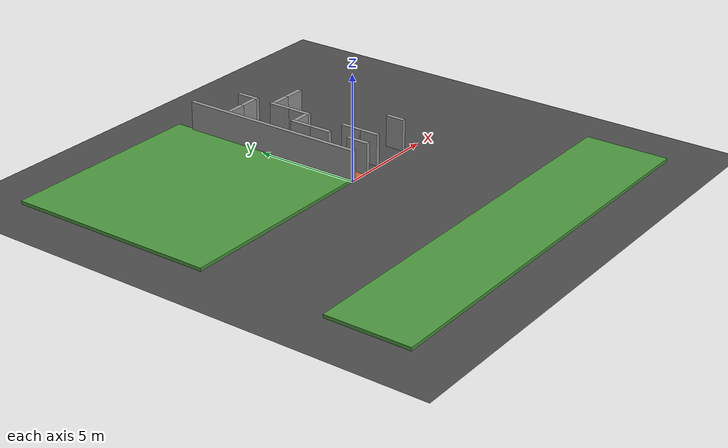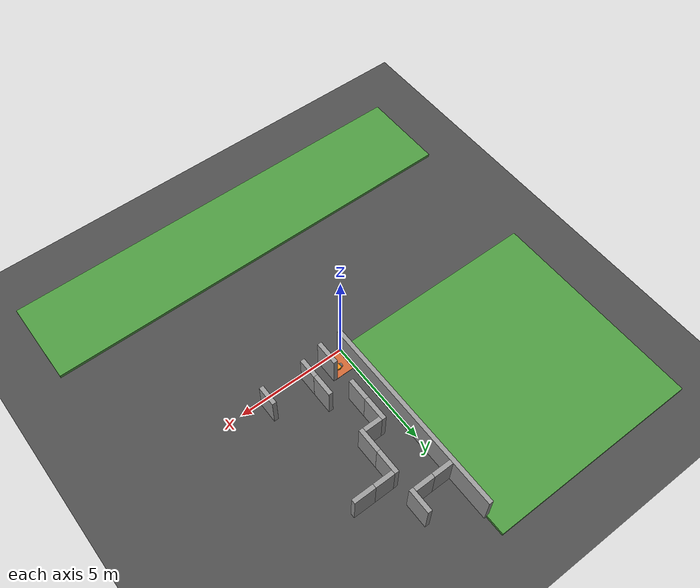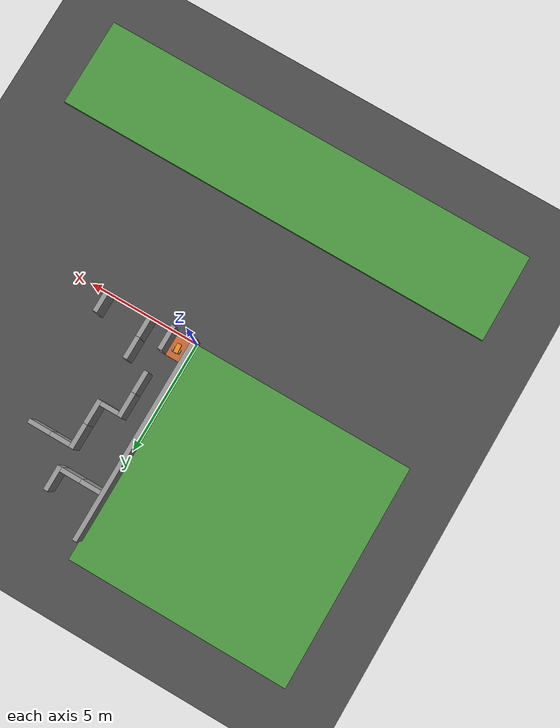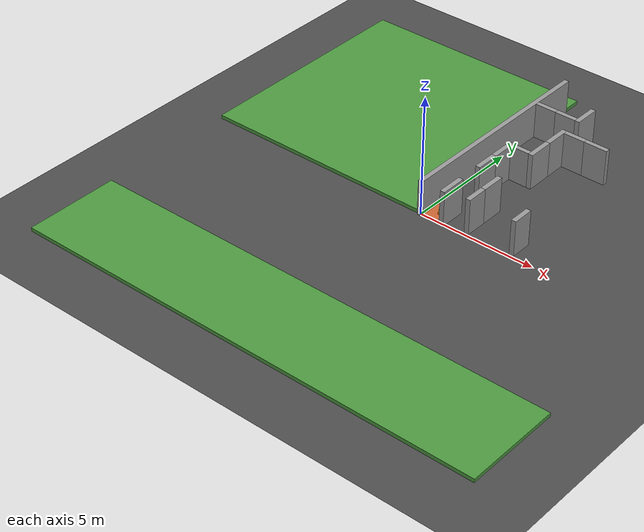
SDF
<sdf version="1.6">
 <world name="default">
  <model name="ground_plane">
   <static>1</static>
   <link name="link">
    <collision name="collision">
     <geometry><plane><normal>0 0 1</normal><size>20 20</size></plane></geometry>
     <surface><friction><ode><mu>100</mu><mu2>50</mu2></ode></friction></surface>
    </collision>
    <visual name="visual">
     <cast_shadows>0</cast_shadows>
     <geometry><plane><normal>0 0 1</normal><size>20 20</size></plane></geometry>
     <material>
      <script>
       <uri>model://asphalt_plane/materials/scripts</uri>
       <uri>model://asphalt_plane/materials/textures</uri>
       <name>vrc/asphalt</name>
      </script>
     </material>
    </visual>
   </link>
  </model>
  <model name="grey_1wall">
   <static>1</static>
   <link name="link">
    <pose>0 0 0.75 0 -0 0</pose>
    <inertial>
     <mass>5</mass>
     <inertia><ixx>1</ixx><ixy>0</ixy><ixz>0</ixz><iyy>1</iyy><iyz>0</iyz><izz>1</izz></inertia>
    </inertial>
    <visual name="ModelPreview_1::link::visual_1">
     <cast_shadows>0</cast_shadows>
     <geometry><box><size>0.9 0.2 1.5</size></box></geometry>
     <material>
      <script>
       <uri>model://grey_wall/materials/scripts</uri>
       <uri>model://grey_wall/materials/textures</uri>
       <name>vrc/grey_wall</name>
      </script>
      <ambient>1 1 1 1</ambient>
      <diffuse>1 1 1 1</diffuse>
      <specular>0 0 0 1</specular>
      <emissive>0 0 0 1</emissive>
      <shader type="vertex"><normal_map>__default__</normal_map></shader>
     </material>
    </visual>
    <collision name="collision">
     <geometry><box><size>0.9 0.2 1.5</size></box></geometry>
     <surface>
      <friction>
       <ode><mu>1</mu><mu2>1</mu2><fdir1>0 0 0</fdir1><slip1>0</slip1><slip2>0</slip2></ode>
       <torsional>
        <coefficient>1</coefficient>
        <patch_radius>0</patch_radius>
        <surface_radius>0</surface_radius>
        <use_patch_radius>1</use_patch_radius>
        <ode><slip>0</slip></ode>
       </torsional>
      </friction>
      <bounce><restitution_coefficient>0</restitution_coefficient><threshold>1e+06</threshold></bounce>
      <contact>
       <collide_without_contact>0</collide_without_contact>
       <collide_without_contact_bitmask>1</collide_without_contact_bitmask>
       <collide_bitmask>1</collide_bitmask>
       <ode>
        <soft_cfm>0</soft_cfm>
        <soft_erp>0.2</soft_erp>
        <kp>1e+13</kp>
        <kd>1</kd>
        <max_vel>0.01</max_vel>
        <min_depth>0</min_depth>
       </ode>
       <bullet>
        <split_impulse>1</split_impulse>
        <split_impulse_penetration_threshold>-0.01</split_impulse_penetration_threshold>
        <soft_cfm>0</soft_cfm>
        <soft_erp>0.2</soft_erp>
        <kp>1e+13</kp>
        <kd>1</kd>
       </bullet>
      </contact>
     </surface>
    </collision>
   </link>
   <static>1</static>
   <pose>2.55 6 0 0 -0 0</pose>
  </model>
  <model name="grey_1wall_0">
   <static>1</static>
   <link name="link">
    <pose>0 0 0.75 0 -0 0</pose>
    <inertial>
     <mass>5</mass>
     <inertia><ixx>1</ixx><ixy>0</ixy><ixz>0</ixz><iyy>1</iyy><iyz>0</iyz><izz>1</izz></inertia>
    </inertial>
    <visual name="ModelPreview_1::link::visual_1">
     <cast_shadows>0</cast_shadows>
     <geometry><box><size>1 0.2 1.5</size></box></geometry>
     <material>
      <script>
       <uri>model://grey_wall/materials/scripts</uri>
       <uri>model://grey_wall/materials/textures</uri>
       <name>vrc/grey_wall</name>
      </script>
      <ambient>1 1 1 1</ambient>
      <diffuse>1 1 1 1</diffuse>
      <specular>0 0 0 1</specular>
      <emissive>0 0 0 1</emissive>
      <shader type="vertex"><normal_map>__default__</normal_map></shader>
     </material>
    </visual>
    <collision name="collision">
     <geometry><box><size>1 0.2 1.5</size></box></geometry>
     <surface>
      <friction>
       <ode><mu>1</mu><mu2>1</mu2><fdir1>0 0 0</fdir1><slip1>0</slip1><slip2>0</slip2></ode>
       <torsional>
        <coefficient>1</coefficient>
        <patch_radius>0</patch_radius>
        <surface_radius>0</surface_radius>
        <use_patch_radius>1</use_patch_radius>
        <ode><slip>0</slip></ode>
       </torsional>
      </friction>
      <bounce><restitution_coefficient>0</restitution_coefficient><threshold>1e+06</threshold></bounce>
      <contact>
       <collide_without_contact>0</collide_without_contact>
       <collide_without_contact_bitmask>1</collide_without_contact_bitmask>
       <collide_bitmask>1</collide_bitmask>
       <ode>
        <soft_cfm>0</soft_cfm>
        <soft_erp>0.2</soft_erp>
        <kp>1e+13</kp>
        <kd>1</kd>
        <max_vel>0.01</max_vel>
        <min_depth>0</min_depth>
       </ode>
       <bullet>
        <split_impulse>1</split_impulse>
        <split_impulse_penetration_threshold>-0.01</split_impulse_penetration_threshold>
        <soft_cfm>0</soft_cfm>
        <soft_erp>0.2</soft_erp>
        <kp>1e+13</kp>
        <kd>1</kd>
       </bullet>
      </contact>
     </surface>
    </collision>
   </link>
   <static>1</static>
   <pose>3.5 6 0 0 -0 0</pose>
  </model>
  <model name="grey_9wall_1">
   <static>1</static>
   <link name="link">
    <pose>0 0 0.75 0 -0 1.57</pose>
    <inertial>
     <mass>20</mass>
     <inertia><ixx>1</ixx><ixy>0</ixy><ixz>0</ixz><iyy>1</iyy><iyz>0</iyz><izz>1</izz></inertia>
    </inertial>
    <visual name="ModelPreview_1::link::visual_1">
     <cast_shadows>0</cast_shadows>
     <geometry><box><size>9.2 0.2 1.5</size></box></geometry>
     <material>
      <script>
       <uri>model://grey_wall/materials/scripts</uri>
       <uri>model://grey_wall/materials/textures</uri>
       <name>vrc/grey_wall</name>
      </script>
      <ambient>1 1 1 1</ambient>
      <diffuse>1 1 1 1</diffuse>
      <specular>0 0 0 1</specular>
      <emissive>0 0 0 1</emissive>
      <shader type="vertex"><normal_map>__default__</normal_map></shader>
     </material>
    </visual>
    <collision name="collision">
     <geometry><box><size>9.2 0.2 1.5</size></box></geometry>
     <surface>
      <friction>
       <ode><mu>1</mu><mu2>1</mu2><fdir1>0 0 0</fdir1><slip1>0</slip1><slip2>0</slip2></ode>
       <torsional>
        <coefficient>1</coefficient>
        <patch_radius>0</patch_radius>
        <surface_radius>0</surface_radius>
        <use_patch_radius>1</use_patch_radius>
        <ode><slip>0</slip></ode>
       </torsional>
      </friction>
      <bounce><restitution_coefficient>0</restitution_coefficient><threshold>1e+06</threshold></bounce>
      <contact>
       <collide_without_contact>0</collide_without_contact>
       <collide_without_contact_bitmask>1</collide_without_contact_bitmask>
       <collide_bitmask>1</collide_bitmask>
       <ode>
        <soft_cfm>0</soft_cfm>
        <soft_erp>0.2</soft_erp>
        <kp>1e+13</kp>
        <kd>1</kd>
        <max_vel>0.01</max_vel>
        <min_depth>0</min_depth>
       </ode>
       <bullet>
        <split_impulse>1</split_impulse>
        <split_impulse_penetration_threshold>-0.01</split_impulse_penetration_threshold>
        <soft_cfm>0</soft_cfm>
        <soft_erp>0.2</soft_erp>
        <kp>1e+13</kp>
        <kd>1</kd>
       </bullet>
      </contact>
     </surface>
    </collision>
   </link>
   <static>1</static>
   <pose>0 4.5 0 0 -0 0</pose>
  </model>
  <model name="box_init">
   <static>1</static>
   <link name="link">
    <inertial>
     <mass>1</mass>
     <inertia>
      <ixx>0.166667</ixx>
      <ixy>0</ixy>
      <ixz>0</ixz>
      <iyy>0.166667</iyy>
      <iyz>0</iyz>
      <izz>0.166667</izz>
     </inertia>
    </inertial>
    <visual name="visual">
     <geometry><box><size>1 1 0.1</size></box></geometry>
     <material>
      <script><name>Gazebo/Grey</name><uri>file://media/materials/scripts/gazebo.material</uri></script>
      <ambient>1 0.5 0.2 1</ambient>
      <diffuse>0.8 0.4 0.2 1</diffuse>
      <specular>0.05 0.02 0.01 1</specular>
      <emissive>0 0 0 1</emissive>
      <shader type="vertex"><normal_map>__default__</normal_map></shader>
     </material>
    </visual>
    <collision name="collision">
     <geometry><box><size>1 1 0.1</size></box></geometry>
     <surface>
      <friction>
       <ode><mu>1</mu><mu2>1</mu2><fdir1>0 0 0</fdir1><slip1>0</slip1><slip2>0</slip2></ode>
       <torsional>
        <coefficient>1</coefficient>
        <patch_radius>0</patch_radius>
        <surface_radius>0</surface_radius>
        <use_patch_radius>1</use_patch_radius>
        <ode><slip>0</slip></ode>
       </torsional>
      </friction>
      <bounce><restitution_coefficient>0</restitution_coefficient><threshold>1e+06</threshold></bounce>
      <contact>
       <collide_without_contact>0</collide_without_contact>
       <collide_without_contact_bitmask>1</collide_without_contact_bitmask>
       <collide_bitmask>1</collide_bitmask>
       <ode>
        <soft_cfm>0</soft_cfm>
        <soft_erp>0.2</soft_erp>
        <kp>1e+13</kp>
        <kd>1</kd>
        <max_vel>0.01</max_vel>
        <min_depth>0</min_depth>
       </ode>
       <bullet>
        <split_impulse>1</split_impulse>
        <split_impulse_penetration_threshold>-0.01</split_impulse_penetration_threshold>
        <soft_cfm>0</soft_cfm>
        <soft_erp>0.2</soft_erp>
        <kp>1e+13</kp>
        <kd>1</kd>
       </bullet>
      </contact>
     </surface>
    </collision>
   </link>
   <static>0</static>
   <allow_auto_disable>0</allow_auto_disable>
   <pose>0.5 0.5 -0.049 0 -0 0</pose>
  </model>
  <model name="unit_box_platform">
   <static>1</static>
   <link name="link">
    <pose>9.4118 -2.75754 0 0 -0 0</pose>
    <inertial>
     <mass>10</mass>
     <inertia>
      <ixx>0.166667</ixx>
      <ixy>0</ixy>
      <ixz>0</ixz>
      <iyy>0.166667</iyy>
      <iyz>0</iyz>
      <izz>0.166667</izz>
     </inertia>
    </inertial>
    <visual name="visual">
     <cast_shadows>0</cast_shadows>
     <geometry><box><size>20 4 0.25</size></box></geometry>
     <material>
      <script><name>Gazebo/Grass</name><uri>file://media/materials/textures/gazebo.material</uri></script>
      <ambient>0.3 0.3 0.3 1</ambient>
      <diffuse>0.7 0.7 0.7 1</diffuse>
      <specular>0.01 0.01 0.01 1</specular>
      <emissive>0 0 0 1</emissive>
      <shader type="vertex"><normal_map>__default__</normal_map></shader>
     </material>
     <cast_shadows>0</cast_shadows>
    </visual>
    <collision name="collision">
     <geometry><box><size>20 4 0.25</size></box></geometry>
     <surface>
      <friction>
       <ode><mu>1</mu><mu2>1</mu2><fdir1>0 0 0</fdir1><slip1>0</slip1><slip2>0</slip2></ode>
       <torsional>
        <coefficient>1</coefficient>
        <patch_radius>0</patch_radius>
        <surface_radius>0</surface_radius>
        <use_patch_radius>1</use_patch_radius>
        <ode><slip>0</slip></ode>
       </torsional>
      </friction>
      <bounce><restitution_coefficient>0</restitution_coefficient><threshold>1e+06</threshold></bounce>
      <contact>
       <collide_without_contact>0</collide_without_contact>
       <collide_without_contact_bitmask>1</collide_without_contact_bitmask>
       <collide_bitmask>1</collide_bitmask>
       <ode>
        <soft_cfm>0</soft_cfm>
        <soft_erp>0.2</soft_erp>
        <kp>1e+13</kp>
        <kd>1</kd>
        <max_vel>0.01</max_vel>
        <min_depth>0</min_depth>
       </ode>
       <bullet>
        <split_impulse>1</split_impulse>
        <split_impulse_penetration_threshold>-0.01</split_impulse_penetration_threshold>
        <soft_cfm>0</soft_cfm>
        <soft_erp>0.2</soft_erp>
        <kp>1e+13</kp>
        <kd>1</kd>
       </bullet>
      </contact>
     </surface>
    </collision>
   </link>
   <static>0</static>
   <pose>-9.4118 -5.24246 0.001 0 -0 0</pose>
  </model>
  <model name="unit_box_lawn">
   <static>1</static>
   <link name="link">
    <pose>14.3617 -5.74416 0 0 -0 0</pose>
    <inertial>
     <mass>10</mass>
     <inertia>
      <ixx>0.166667</ixx>
      <ixy>0</ixy>
      <ixz>0</ixz>
      <iyy>0.166667</iyy>
      <iyz>0</iyz>
      <izz>0.166667</izz>
     </inertia>
    </inertial>
    <visual name="visual">
     <geometry><box><size>10 10 0.25</size></box></geometry>
     <material>
      <script><name>Gazebo/Grass</name><uri>file://media/materials/textures/gazebo.material</uri></script>
      <ambient>0.3 0.3 0.3 1</ambient>
      <diffuse>0.7 0.7 0.7 1</diffuse>
      <specular>0.01 0.01 0.01 1</specular>
      <emissive>0 0 0 1</emissive>
      <shader type="vertex"><normal_map>__default__</normal_map></shader>
     </material>
    </visual>
    <collision name="collision">
     <geometry><box><size>10 10 0.25</size></box></geometry>
     <surface>
      <friction>
       <ode><mu>1</mu><mu2>1</mu2><fdir1>0 0 0</fdir1><slip1>0</slip1><slip2>0</slip2></ode>
       <torsional>
        <coefficient>1</coefficient>
        <patch_radius>0</patch_radius>
        <surface_radius>0</surface_radius>
        <use_patch_radius>1</use_patch_radius>
        <ode><slip>0</slip></ode>
       </torsional>
      </friction>
      <bounce><restitution_coefficient>0</restitution_coefficient><threshold>1e+06</threshold></bounce>
      <contact>
       <collide_without_contact>0</collide_without_contact>
       <collide_without_contact_bitmask>1</collide_without_contact_bitmask>
       <collide_bitmask>1</collide_bitmask>
       <ode>
        <soft_cfm>0</soft_cfm>
        <soft_erp>0.2</soft_erp>
        <kp>1e+13</kp>
        <kd>1</kd>
        <max_vel>0.01</max_vel>
        <min_depth>0</min_depth>
       </ode>
       <bullet>
        <split_impulse>1</split_impulse>
        <split_impulse_penetration_threshold>-0.01</split_impulse_penetration_threshold>
        <soft_cfm>0</soft_cfm>
        <soft_erp>0.2</soft_erp>
        <kp>1e+13</kp>
        <kd>1</kd>
       </bullet>
      </contact>
     </surface>
    </collision>
   </link>
   <static>0</static>
   <pose>-19.3617 10.7442 0.001 0 -0 0</pose>
  </model>
  <model name="grey_1wall_clone_0">
   <static>1</static>
   <link name="link">
    <pose>0 0 0.75 0 -0 0</pose>
    <inertial>
     <mass>5</mass>
     <inertia><ixx>1</ixx><ixy>0</ixy><ixz>0</ixz><iyy>1</iyy><iyz>0</iyz><izz>1</izz></inertia>
    </inertial>
    <visual name="ModelPreview_1::link::visual_1">
     <cast_shadows>0</cast_shadows>
     <geometry><box><size>0.9 0.2 1.5</size></box></geometry>
     <material>
      <script>
       <uri>model://grey_wall/materials/scripts</uri>
       <uri>model://grey_wall/materials/textures</uri>
       <name>vrc/grey_wall</name>
      </script>
      <ambient>1 1 1 1</ambient>
      <diffuse>1 1 1 1</diffuse>
      <specular>0 0 0 1</specular>
      <emissive>0 0 0 1</emissive>
      <shader type="vertex"><normal_map>__default__</normal_map></shader>
     </material>
    </visual>
    <collision name="collision">
     <geometry><box><size>0.9 0.2 1.5</size></box></geometry>
     <surface>
      <friction>
       <ode><mu>1</mu><mu2>1</mu2><fdir1>0 0 0</fdir1><slip1>0</slip1><slip2>0</slip2></ode>
       <torsional>
        <coefficient>1</coefficient>
        <patch_radius>0</patch_radius>
        <surface_radius>0</surface_radius>
        <use_patch_radius>1</use_patch_radius>
        <ode><slip>0</slip></ode>
       </torsional>
      </friction>
      <bounce><restitution_coefficient>0</restitution_coefficient><threshold>1e+06</threshold></bounce>
      <contact>
       <collide_without_contact>0</collide_without_contact>
       <collide_without_contact_bitmask>1</collide_without_contact_bitmask>
       <collide_bitmask>1</collide_bitmask>
       <ode>
        <soft_cfm>0</soft_cfm>
        <soft_erp>0.2</soft_erp>
        <kp>1e+13</kp>
        <kd>1</kd>
        <max_vel>0.01</max_vel>
        <min_depth>0</min_depth>
       </ode>
       <bullet>
        <split_impulse>1</split_impulse>
        <split_impulse_penetration_threshold>-0.01</split_impulse_penetration_threshold>
        <soft_cfm>0</soft_cfm>
        <soft_erp>0.2</soft_erp>
        <kp>1e+13</kp>
        <kd>1</kd>
       </bullet>
      </contact>
     </surface>
    </collision>
   </link>
   <static>1</static>
   <pose>0.55 7 0 0 -0 0</pose>
  </model>
  <model name="grey_1wall_clone_1">
   <static>1</static>
   <link name="link">
    <pose>0 0 0.75 0 -0 0</pose>
    <inertial>
     <mass>5</mass>
     <inertia><ixx>1</ixx><ixy>0</ixy><ixz>0</ixz><iyy>1</iyy><iyz>0</iyz><izz>1</izz></inertia>
    </inertial>
    <visual name="ModelPreview_1::link::visual_1">
     <cast_shadows>0</cast_shadows>
     <geometry><box><size>0.9 0.2 1.5</size></box></geometry>
     <material>
      <script>
       <uri>model://grey_wall/materials/scripts</uri>
       <uri>model://grey_wall/materials/textures</uri>
       <name>vrc/grey_wall</name>
      </script>
      <ambient>1 1 1 1</ambient>
      <diffuse>1 1 1 1</diffuse>
      <specular>0 0 0 1</specular>
      <emissive>0 0 0 1</emissive>
      <shader type="vertex"><normal_map>__default__</normal_map></shader>
     </material>
    </visual>
    <collision name="collision">
     <geometry><box><size>0.9 0.2 1.5</size></box></geometry>
     <surface>
      <friction>
       <ode><mu>1</mu><mu2>1</mu2><fdir1>0 0 0</fdir1><slip1>0</slip1><slip2>0</slip2></ode>
       <torsional>
        <coefficient>1</coefficient>
        <patch_radius>0</patch_radius>
        <surface_radius>0</surface_radius>
        <use_patch_radius>1</use_patch_radius>
        <ode><slip>0</slip></ode>
       </torsional>
      </friction>
      <bounce><restitution_coefficient>0</restitution_coefficient><threshold>1e+06</threshold></bounce>
      <contact>
       <collide_without_contact>0</collide_without_contact>
       <collide_without_contact_bitmask>1</collide_without_contact_bitmask>
       <collide_bitmask>1</collide_bitmask>
       <ode>
        <soft_cfm>0</soft_cfm>
        <soft_erp>0.2</soft_erp>
        <kp>1e+13</kp>
        <kd>1</kd>
        <max_vel>0.01</max_vel>
        <min_depth>0</min_depth>
       </ode>
       <bullet>
        <split_impulse>1</split_impulse>
        <split_impulse_penetration_threshold>-0.01</split_impulse_penetration_threshold>
        <soft_cfm>0</soft_cfm>
        <soft_erp>0.2</soft_erp>
        <kp>1e+13</kp>
        <kd>1</kd>
       </bullet>
      </contact>
     </surface>
    </collision>
   </link>
   <static>1</static>
   <pose>1.45 7 0 0 -0 0</pose>
  </model>
  <model name="grey_1wall_90">
   <static>1</static>
   <link name="link">
    <pose>0 0 0.75 0 -0 0</pose>
    <inertial>
     <mass>5</mass>
     <inertia><ixx>1</ixx><ixy>0</ixy><ixz>0</ixz><iyy>1</iyy><iyz>0</iyz><izz>1</izz></inertia>
    </inertial>
    <visual name="ModelPreview_1::link::visual_1">
     <cast_shadows>0</cast_shadows>
     <geometry><box><size>1.1 0.2 1.5</size></box></geometry>
     <material>
      <script>
       <uri>model://grey_wall/materials/scripts</uri>
       <uri>model://grey_wall/materials/textures</uri>
       <name>vrc/grey_wall</name>
      </script>
      <ambient>1 1 1 1</ambient>
      <diffuse>1 1 1 1</diffuse>
      <specular>0 0 0 1</specular>
      <emissive>0 0 0 1</emissive>
      <shader type="vertex"><normal_map>__default__</normal_map></shader>
     </material>
    </visual>
    <collision name="collision">
     <geometry><box><size>1.1 0.2 1.5</size></box></geometry>
     <surface>
      <friction>
       <ode><mu>1</mu><mu2>1</mu2><fdir1>0 0 0</fdir1><slip1>0</slip1><slip2>0</slip2></ode>
       <torsional>
        <coefficient>1</coefficient>
        <patch_radius>0</patch_radius>
        <surface_radius>0</surface_radius>
        <use_patch_radius>1</use_patch_radius>
        <ode><slip>0</slip></ode>
       </torsional>
      </friction>
      <bounce><restitution_coefficient>0</restitution_coefficient><threshold>1e+06</threshold></bounce>
      <contact>
       <collide_without_contact>0</collide_without_contact>
       <collide_without_contact_bitmask>1</collide_without_contact_bitmask>
       <collide_bitmask>1</collide_bitmask>
       <ode>
        <soft_cfm>0</soft_cfm>
        <soft_erp>0.2</soft_erp>
        <kp>1e+13</kp>
        <kd>1</kd>
        <max_vel>0.01</max_vel>
        <min_depth>0</min_depth>
       </ode>
       <bullet>
        <split_impulse>1</split_impulse>
        <split_impulse_penetration_threshold>-0.01</split_impulse_penetration_threshold>
        <soft_cfm>0</soft_cfm>
        <soft_erp>0.2</soft_erp>
        <kp>1e+13</kp>
        <kd>1</kd>
       </bullet>
      </contact>
     </surface>
    </collision>
   </link>
   <static>1</static>
   <pose>2 7.45 0 0 -0 1.57</pose>
  </model>
  <model name="grey_1wall_90_clone">
   <static>1</static>
   <link name="link">
    <pose>0 0 0.75 0 -0 0</pose>
    <inertial>
     <mass>5</mass>
     <inertia><ixx>1</ixx><ixy>0</ixy><ixz>0</ixz><iyy>1</iyy><iyz>0</iyz><izz>1</izz></inertia>
    </inertial>
    <visual name="ModelPreview_1::link::visual_1">
     <cast_shadows>0</cast_shadows>
     <geometry><box><size>1.1 0.2 1.5</size></box></geometry>
     <material>
      <script>
       <uri>model://grey_wall/materials/scripts</uri>
       <uri>model://grey_wall/materials/textures</uri>
       <name>vrc/grey_wall</name>
      </script>
      <ambient>1 1 1 1</ambient>
      <diffuse>1 1 1 1</diffuse>
      <specular>0 0 0 1</specular>
      <emissive>0 0 0 1</emissive>
      <shader type="vertex"><normal_map>__default__</normal_map></shader>
     </material>
    </visual>
    <collision name="collision">
     <geometry><box><size>1.1 0.2 1.5</size></box></geometry>
     <surface>
      <friction>
       <ode><mu>1</mu><mu2>1</mu2><fdir1>0 0 0</fdir1><slip1>0</slip1><slip2>0</slip2></ode>
       <torsional>
        <coefficient>1</coefficient>
        <patch_radius>0</patch_radius>
        <surface_radius>0</surface_radius>
        <use_patch_radius>1</use_patch_radius>
        <ode><slip>0</slip></ode>
       </torsional>
      </friction>
      <bounce><restitution_coefficient>0</restitution_coefficient><threshold>1e+06</threshold></bounce>
      <contact>
       <collide_without_contact>0</collide_without_contact>
       <collide_without_contact_bitmask>1</collide_without_contact_bitmask>
       <collide_bitmask>1</collide_bitmask>
       <ode>
        <soft_cfm>0</soft_cfm>
        <soft_erp>0.2</soft_erp>
        <kp>1e+13</kp>
        <kd>1</kd>
        <max_vel>0.01</max_vel>
        <min_depth>0</min_depth>
       </ode>
       <bullet>
        <split_impulse>1</split_impulse>
        <split_impulse_penetration_threshold>-0.01</split_impulse_penetration_threshold>
        <soft_cfm>0</soft_cfm>
        <soft_erp>0.2</soft_erp>
        <kp>1e+13</kp>
        <kd>1</kd>
       </bullet>
      </contact>
     </surface>
    </collision>
   </link>
   <static>1</static>
   <pose>2 5.55 0 0 -0 1.57</pose>
  </model>
  <model name="grey_1wall_90_clone_0">
   <static>1</static>
   <link name="link">
    <pose>0 0 0.75 0 -0 0</pose>
    <inertial>
     <mass>5</mass>
     <inertia><ixx>1</ixx><ixy>0</ixy><ixz>0</ixz><iyy>1</iyy><iyz>0</iyz><izz>1</izz></inertia>
    </inertial>
    <visual name="ModelPreview_1::link::visual_1">
     <cast_shadows>0</cast_shadows>
     <geometry><box><size>1.1 0.2 1.5</size></box></geometry>
     <material>
      <script>
       <uri>model://grey_wall/materials/scripts</uri>
       <uri>model://grey_wall/materials/textures</uri>
       <name>vrc/grey_wall</name>
      </script>
      <ambient>1 1 1 1</ambient>
      <diffuse>1 1 1 1</diffuse>
      <specular>0 0 0 1</specular>
      <emissive>0 0 0 1</emissive>
      <shader type="vertex"><normal_map>__default__</normal_map></shader>
     </material>
    </visual>
    <collision name="collision">
     <geometry><box><size>1.1 0.2 1.5</size></box></geometry>
     <surface>
      <friction>
       <ode><mu>1</mu><mu2>1</mu2><fdir1>0 0 0</fdir1><slip1>0</slip1><slip2>0</slip2></ode>
       <torsional>
        <coefficient>1</coefficient>
        <patch_radius>0</patch_radius>
        <surface_radius>0</surface_radius>
        <use_patch_radius>1</use_patch_radius>
        <ode><slip>0</slip></ode>
       </torsional>
      </friction>
      <bounce><restitution_coefficient>0</restitution_coefficient><threshold>1e+06</threshold></bounce>
      <contact>
       <collide_without_contact>0</collide_without_contact>
       <collide_without_contact_bitmask>1</collide_without_contact_bitmask>
       <collide_bitmask>1</collide_bitmask>
       <ode>
        <soft_cfm>0</soft_cfm>
        <soft_erp>0.2</soft_erp>
        <kp>1e+13</kp>
        <kd>1</kd>
        <max_vel>0.01</max_vel>
        <min_depth>0</min_depth>
       </ode>
       <bullet>
        <split_impulse>1</split_impulse>
        <split_impulse_penetration_threshold>-0.01</split_impulse_penetration_threshold>
        <soft_cfm>0</soft_cfm>
        <soft_erp>0.2</soft_erp>
        <kp>1e+13</kp>
        <kd>1</kd>
       </bullet>
      </contact>
     </surface>
    </collision>
   </link>
   <static>1</static>
   <pose>2 4.45 0 0 -0 1.57</pose>
  </model>
  <model name="grey_1wall_90_clone_1">
   <static>1</static>
   <link name="link">
    <pose>0 0 0.75 0 -0 0</pose>
    <inertial>
     <mass>5</mass>
     <inertia><ixx>1</ixx><ixy>0</ixy><ixz>0</ixz><iyy>1</iyy><iyz>0</iyz><izz>1</izz></inertia>
    </inertial>
    <visual name="ModelPreview_1::link::visual_1">
     <cast_shadows>0</cast_shadows>
     <geometry><box><size>1 0.2 1.5</size></box></geometry>
     <material>
      <script>
       <uri>model://grey_wall/materials/scripts</uri>
       <uri>model://grey_wall/materials/textures</uri>
       <name>vrc/grey_wall</name>
      </script>
      <ambient>1 1 1 1</ambient>
      <diffuse>1 1 1 1</diffuse>
      <specular>0 0 0 1</specular>
      <emissive>0 0 0 1</emissive>
      <shader type="vertex"><normal_map>__default__</normal_map></shader>
     </material>
    </visual>
    <collision name="collision">
     <geometry><box><size>1 0.2 1.5</size></box></geometry>
     <surface>
      <friction>
       <ode><mu>1</mu><mu2>1</mu2><fdir1>0 0 0</fdir1><slip1>0</slip1><slip2>0</slip2></ode>
       <torsional>
        <coefficient>1</coefficient>
        <patch_radius>0</patch_radius>
        <surface_radius>0</surface_radius>
        <use_patch_radius>1</use_patch_radius>
        <ode><slip>0</slip></ode>
       </torsional>
      </friction>
      <bounce><restitution_coefficient>0</restitution_coefficient><threshold>1e+06</threshold></bounce>
      <contact>
       <collide_without_contact>0</collide_without_contact>
       <collide_without_contact_bitmask>1</collide_without_contact_bitmask>
       <collide_bitmask>1</collide_bitmask>
       <ode>
        <soft_cfm>0</soft_cfm>
        <soft_erp>0.2</soft_erp>
        <kp>1e+13</kp>
        <kd>1</kd>
        <max_vel>0.01</max_vel>
        <min_depth>0</min_depth>
       </ode>
       <bullet>
        <split_impulse>1</split_impulse>
        <split_impulse_penetration_threshold>-0.01</split_impulse_penetration_threshold>
        <soft_cfm>0</soft_cfm>
        <soft_erp>0.2</soft_erp>
        <kp>1e+13</kp>
        <kd>1</kd>
       </bullet>
      </contact>
     </surface>
    </collision>
   </link>
   <static>1</static>
   <pose>1 2.5 0 0 -0 1.57</pose>
  </model>
  <model name="grey_1wall_90_clone_2">
   <static>1</static>
   <link name="link">
    <pose>0 0 0.75 0 -0 0</pose>
    <inertial>
     <mass>5</mass>
     <inertia><ixx>1</ixx><ixy>0</ixy><ixz>0</ixz><iyy>1</iyy><iyz>0</iyz><izz>1</izz></inertia>
    </inertial>
    <visual name="ModelPreview_1::link::visual_1">
     <cast_shadows>0</cast_shadows>
     <geometry><box><size>1.1 0.2 1.5</size></box></geometry>
     <material>
      <script>
       <uri>model://grey_wall/materials/scripts</uri>
       <uri>model://grey_wall/materials/textures</uri>
       <name>vrc/grey_wall</name>
      </script>
      <ambient>1 1 1 1</ambient>
      <diffuse>1 1 1 1</diffuse>
      <specular>0 0 0 1</specular>
      <emissive>0 0 0 1</emissive>
      <shader type="vertex"><normal_map>__default__</normal_map></shader>
     </material>
    </visual>
    <collision name="collision">
     <geometry><box><size>1.1 0.2 1.5</size></box></geometry>
     <surface>
      <friction>
       <ode><mu>1</mu><mu2>1</mu2><fdir1>0 0 0</fdir1><slip1>0</slip1><slip2>0</slip2></ode>
       <torsional>
        <coefficient>1</coefficient>
        <patch_radius>0</patch_radius>
        <surface_radius>0</surface_radius>
        <use_patch_radius>1</use_patch_radius>
        <ode><slip>0</slip></ode>
       </torsional>
      </friction>
      <bounce><restitution_coefficient>0</restitution_coefficient><threshold>1e+06</threshold></bounce>
      <contact>
       <collide_without_contact>0</collide_without_contact>
       <collide_without_contact_bitmask>1</collide_without_contact_bitmask>
       <collide_bitmask>1</collide_bitmask>
       <ode>
        <soft_cfm>0</soft_cfm>
        <soft_erp>0.2</soft_erp>
        <kp>1e+13</kp>
        <kd>1</kd>
        <max_vel>0.01</max_vel>
        <min_depth>0</min_depth>
       </ode>
       <bullet>
        <split_impulse>1</split_impulse>
        <split_impulse_penetration_threshold>-0.01</split_impulse_penetration_threshold>
        <soft_cfm>0</soft_cfm>
        <soft_erp>0.2</soft_erp>
        <kp>1e+13</kp>
        <kd>1</kd>
       </bullet>
      </contact>
     </surface>
    </collision>
   </link>
   <static>1</static>
   <pose>1 3.55 0 0 -0 1.57</pose>
  </model>
  <model name="grey_1wall_90_clone_3">
   <static>1</static>
   <link name="link">
    <pose>0 0 0.75 0 -0 0</pose>
    <inertial>
     <mass>5</mass>
     <inertia><ixx>1</ixx><ixy>0</ixy><ixz>0</ixz><iyy>1</iyy><iyz>0</iyz><izz>1</izz></inertia>
    </inertial>
    <visual name="ModelPreview_1::link::visual_1">
     <cast_shadows>0</cast_shadows>
     <geometry><box><size>1.1 0.2 1.5</size></box></geometry>
     <material>
      <script>
       <uri>model://grey_wall/materials/scripts</uri>
       <uri>model://grey_wall/materials/textures</uri>
       <name>vrc/grey_wall</name>
      </script>
      <ambient>1 1 1 1</ambient>
      <diffuse>1 1 1 1</diffuse>
      <specular>0 0 0 1</specular>
      <emissive>0 0 0 1</emissive>
      <shader type="vertex"><normal_map>__default__</normal_map></shader>
     </material>
    </visual>
    <collision name="collision">
     <geometry><box><size>1.1 0.2 1.5</size></box></geometry>
     <surface>
      <friction>
       <ode><mu>1</mu><mu2>1</mu2><fdir1>0 0 0</fdir1><slip1>0</slip1><slip2>0</slip2></ode>
       <torsional>
        <coefficient>1</coefficient>
        <patch_radius>0</patch_radius>
        <surface_radius>0</surface_radius>
        <use_patch_radius>1</use_patch_radius>
        <ode><slip>0</slip></ode>
       </torsional>
      </friction>
      <bounce><restitution_coefficient>0</restitution_coefficient><threshold>1e+06</threshold></bounce>
      <contact>
       <collide_without_contact>0</collide_without_contact>
       <collide_without_contact_bitmask>1</collide_without_contact_bitmask>
       <collide_bitmask>1</collide_bitmask>
       <ode>
        <soft_cfm>0</soft_cfm>
        <soft_erp>0.2</soft_erp>
        <kp>1e+13</kp>
        <kd>1</kd>
        <max_vel>0.01</max_vel>
        <min_depth>0</min_depth>
       </ode>
       <bullet>
        <split_impulse>1</split_impulse>
        <split_impulse_penetration_threshold>-0.01</split_impulse_penetration_threshold>
        <soft_cfm>0</soft_cfm>
        <soft_erp>0.2</soft_erp>
        <kp>1e+13</kp>
        <kd>1</kd>
       </bullet>
      </contact>
     </surface>
    </collision>
   </link>
   <static>1</static>
   <pose>1 0.45 0 0 -0 1.57</pose>
  </model>
  <model name="grey_1wall_90_clone_2_clone">
   <static>1</static>
   <link name="link">
    <pose>0 0 0.75 0 -0 0</pose>
    <inertial>
     <mass>5</mass>
     <inertia><ixx>1</ixx><ixy>0</ixy><ixz>0</ixz><iyy>1</iyy><iyz>0</iyz><izz>1</izz></inertia>
    </inertial>
    <visual name="ModelPreview_1::link::visual_1">
     <cast_shadows>0</cast_shadows>
     <geometry><box><size>0.9 0.2 1.5</size></box></geometry>
     <material>
      <script>
       <uri>model://grey_wall/materials/scripts</uri>
       <uri>model://grey_wall/materials/textures</uri>
       <name>vrc/grey_wall</name>
      </script>
      <ambient>1 1 1 1</ambient>
      <diffuse>1 1 1 1</diffuse>
      <specular>0 0 0 1</specular>
      <emissive>0 0 0 1</emissive>
      <shader type="vertex"><normal_map>__default__</normal_map></shader>
     </material>
    </visual>
    <collision name="collision">
     <geometry><box><size>0.9 0.2 1.5</size></box></geometry>
     <surface>
      <friction>
       <ode><mu>1</mu><mu2>1</mu2><fdir1>0 0 0</fdir1><slip1>0</slip1><slip2>0</slip2></ode>
       <torsional>
        <coefficient>1</coefficient>
        <patch_radius>0</patch_radius>
        <surface_radius>0</surface_radius>
        <use_patch_radius>1</use_patch_radius>
        <ode><slip>0</slip></ode>
       </torsional>
      </friction>
      <bounce><restitution_coefficient>0</restitution_coefficient><threshold>1e+06</threshold></bounce>
      <contact>
       <collide_without_contact>0</collide_without_contact>
       <collide_without_contact_bitmask>1</collide_without_contact_bitmask>
       <collide_bitmask>1</collide_bitmask>
       <ode>
        <soft_cfm>0</soft_cfm>
        <soft_erp>0.2</soft_erp>
        <kp>1e+13</kp>
        <kd>1</kd>
        <max_vel>0.01</max_vel>
        <min_depth>0</min_depth>
       </ode>
       <bullet>
        <split_impulse>1</split_impulse>
        <split_impulse_penetration_threshold>-0.01</split_impulse_penetration_threshold>
        <soft_cfm>0</soft_cfm>
        <soft_erp>0.2</soft_erp>
        <kp>1e+13</kp>
        <kd>1</kd>
       </bullet>
      </contact>
     </surface>
    </collision>
   </link>
   <static>1</static>
   <pose>2 0.55 0 0 -0 1.57</pose>
  </model>
  <model name="grey_1wall_90_clone_2_clone_0">
   <static>1</static>
   <link name="link">
    <pose>0 0 0.75 0 -0 0</pose>
    <inertial>
     <mass>5</mass>
     <inertia><ixx>1</ixx><ixy>0</ixy><ixz>0</ixz><iyy>1</iyy><iyz>0</iyz><izz>1</izz></inertia>
    </inertial>
    <visual name="ModelPreview_1::link::visual_1">
     <cast_shadows>0</cast_shadows>
     <geometry><box><size>1 0.2 1.5</size></box></geometry>
     <material>
      <script>
       <uri>model://grey_wall/materials/scripts</uri>
       <uri>model://grey_wall/materials/textures</uri>
       <name>vrc/grey_wall</name>
      </script>
      <ambient>1 1 1 1</ambient>
      <diffuse>1 1 1 1</diffuse>
      <specular>0 0 0 1</specular>
      <emissive>0 0 0 1</emissive>
      <shader type="vertex"><normal_map>__default__</normal_map></shader>
     </material>
    </visual>
    <collision name="collision">
     <geometry><box><size>1 0.2 1.5</size></box></geometry>
     <surface>
      <friction>
       <ode><mu>1</mu><mu2>1</mu2><fdir1>0 0 0</fdir1><slip1>0</slip1><slip2>0</slip2></ode>
       <torsional>
        <coefficient>1</coefficient>
        <patch_radius>0</patch_radius>
        <surface_radius>0</surface_radius>
        <use_patch_radius>1</use_patch_radius>
        <ode><slip>0</slip></ode>
       </torsional>
      </friction>
      <bounce><restitution_coefficient>0</restitution_coefficient><threshold>1e+06</threshold></bounce>
      <contact>
       <collide_without_contact>0</collide_without_contact>
       <collide_without_contact_bitmask>1</collide_without_contact_bitmask>
       <collide_bitmask>1</collide_bitmask>
       <ode>
        <soft_cfm>0</soft_cfm>
        <soft_erp>0.2</soft_erp>
        <kp>1e+13</kp>
        <kd>1</kd>
        <max_vel>0.01</max_vel>
        <min_depth>0</min_depth>
       </ode>
       <bullet>
        <split_impulse>1</split_impulse>
        <split_impulse_penetration_threshold>-0.01</split_impulse_penetration_threshold>
        <soft_cfm>0</soft_cfm>
        <soft_erp>0.2</soft_erp>
        <kp>1e+13</kp>
        <kd>1</kd>
       </bullet>
      </contact>
     </surface>
    </collision>
   </link>
   <static>1</static>
   <pose>2 1.5 0 0 -0 1.57</pose>
  </model>
  <model name="grey_1wall_90_clone_2_clone_1">
   <static>1</static>
   <link name="link">
    <pose>0 0 0.75 0 -0 0</pose>
    <inertial>
     <mass>5</mass>
     <inertia><ixx>1</ixx><ixy>0</ixy><ixz>0</ixz><iyy>1</iyy><iyz>0</iyz><izz>1</izz></inertia>
    </inertial>
    <visual name="ModelPreview_1::link::visual_1">
     <cast_shadows>0</cast_shadows>
     <geometry><box><size>0.9 0.2 1.5</size></box></geometry>
     <material>
      <script>
       <uri>model://grey_wall/materials/scripts</uri>
       <uri>model://grey_wall/materials/textures</uri>
       <name>vrc/grey_wall</name>
      </script>
      <ambient>1 1 1 1</ambient>
      <diffuse>1 1 1 1</diffuse>
      <specular>0 0 0 1</specular>
      <emissive>0 0 0 1</emissive>
      <shader type="vertex"><normal_map>__default__</normal_map></shader>
     </material>
    </visual>
    <collision name="collision">
     <geometry><box><size>0.9 0.2 1.5</size></box></geometry>
     <surface>
      <friction>
       <ode><mu>1</mu><mu2>1</mu2><fdir1>0 0 0</fdir1><slip1>0</slip1><slip2>0</slip2></ode>
       <torsional>
        <coefficient>1</coefficient>
        <patch_radius>0</patch_radius>
        <surface_radius>0</surface_radius>
        <use_patch_radius>1</use_patch_radius>
        <ode><slip>0</slip></ode>
       </torsional>
      </friction>
      <bounce><restitution_coefficient>0</restitution_coefficient><threshold>1e+06</threshold></bounce>
      <contact>
       <collide_without_contact>0</collide_without_contact>
       <collide_without_contact_bitmask>1</collide_without_contact_bitmask>
       <collide_bitmask>1</collide_bitmask>
       <ode>
        <soft_cfm>0</soft_cfm>
        <soft_erp>0.2</soft_erp>
        <kp>1e+13</kp>
        <kd>1</kd>
        <max_vel>0.01</max_vel>
        <min_depth>0</min_depth>
       </ode>
       <bullet>
        <split_impulse>1</split_impulse>
        <split_impulse_penetration_threshold>-0.01</split_impulse_penetration_threshold>
        <soft_cfm>0</soft_cfm>
        <soft_erp>0.2</soft_erp>
        <kp>1e+13</kp>
        <kd>1</kd>
       </bullet>
      </contact>
     </surface>
    </collision>
   </link>
   <static>1</static>
   <pose>4 0.55 0 0 -0 1.57</pose>
  </model>
  <model name="grey_1wall_clone_clone_1">
   <static>1</static>
   <link name="link">
    <pose>0 0 0.75 0 -0 0</pose>
    <inertial>
     <mass>5</mass>
     <inertia><ixx>1</ixx><ixy>0</ixy><ixz>0</ixz><iyy>1</iyy><iyz>0</iyz><izz>1</izz></inertia>
    </inertial>
    <visual name="ModelPreview_1::link::visual_1">
     <cast_shadows>0</cast_shadows>
     <geometry><box><size>0.8 0.2 1.5</size></box></geometry>
     <material>
      <script>
       <uri>model://grey_wall/materials/scripts</uri>
       <uri>model://grey_wall/materials/textures</uri>
       <name>vrc/grey_wall</name>
      </script>
      <ambient>1 1 1 1</ambient>
      <diffuse>1 1 1 1</diffuse>
      <specular>0 0 0 1</specular>
      <emissive>0 0 0 1</emissive>
      <shader type="vertex"><normal_map>__default__</normal_map></shader>
     </material>
    </visual>
    <collision name="collision">
     <geometry><box><size>0.8 0.2 1.5</size></box></geometry>
     <surface>
      <friction>
       <ode><mu>1</mu><mu2>1</mu2><fdir1>0 0 0</fdir1><slip1>0</slip1><slip2>0</slip2></ode>
       <torsional>
        <coefficient>1</coefficient>
        <patch_radius>0</patch_radius>
        <surface_radius>0</surface_radius>
        <use_patch_radius>1</use_patch_radius>
        <ode><slip>0</slip></ode>
       </torsional>
      </friction>
      <bounce><restitution_coefficient>0</restitution_coefficient><threshold>1e+06</threshold></bounce>
      <contact>
       <collide_without_contact>0</collide_without_contact>
       <collide_without_contact_bitmask>1</collide_without_contact_bitmask>
       <collide_bitmask>1</collide_bitmask>
       <ode>
        <soft_cfm>0</soft_cfm>
        <soft_erp>0.2</soft_erp>
        <kp>1e+13</kp>
        <kd>1</kd>
        <max_vel>0.01</max_vel>
        <min_depth>0</min_depth>
       </ode>
       <bullet>
        <split_impulse>1</split_impulse>
        <split_impulse_penetration_threshold>-0.01</split_impulse_penetration_threshold>
        <soft_cfm>0</soft_cfm>
        <soft_erp>0.2</soft_erp>
        <kp>1e+13</kp>
        <kd>1</kd>
       </bullet>
      </contact>
     </surface>
    </collision>
   </link>
   <static>1</static>
   <pose>1.5 4 0 0 -0 0</pose>
  </model>
  <model name="mybot">
   <link name="chassis">
    <inertial>
     <pose>0.00198 0 0.09901 0 -0 0</pose>
     <mass>10.1</mass>
     <inertia>
      <ixx>0.500991</ixx>
      <ixy>0</ixy>
      <ixz>0.0019802</ixz>
      <iyy>1.00495</iyy>
      <iyz>0</iyz>
      <izz>0.103961</izz>
     </inertia>
    </inertial>
    <collision name="chassis_fixed_joint_lump__collision_collision">
     <geometry><box><size>0.4 0.2 0.1</size></box></geometry>
    </collision>
    <collision name="chassis_fixed_joint_lump__caster_collision_collision_1">
     <pose>-0.15 0 -0.05 0 -0 0</pose>
     <geometry><sphere><radius>0.05</radius></sphere></geometry>
    </collision>
    <collision name="chassis_fixed_joint_lump__camera_collision_2">
     <pose>0.2 0 0 0 -0 0</pose>
     <geometry><box><size>0.05 0.05 0.05</size></box></geometry>
    </collision>
    <visual name="chassis_visual_visual">
     <geometry><box><size>0.4 0.2 0.1</size></box></geometry>
     <material>
      <script><name>Gazebo/Orange</name><uri>file://media/materials/scripts/gazebo.material</uri></script>
     </material>
    </visual>
    <visual name="chassis_fixed_joint_lump__caster_visual_visual_1">
     <pose>-0.15 0 -0.05 0 -0 0</pose>
     <geometry><sphere><radius>0.05</radius></sphere></geometry>
    </visual>
    <visual name="chassis_fixed_joint_lump__camera_visual_2">
     <pose>0.2 0 0 0 -0 0</pose>
     <geometry><box><size>0.05 0.05 0.05</size></box></geometry>
     <material>
      <script><name>Gazebo/Green</name><uri>file://media/materials/scripts/gazebo.material</uri></script>
     </material>
    </visual>
    <sensor name="camera1" type="camera">
     <update_rate>30</update_rate>
     <camera name="head">
      <horizontal_fov>1.39626</horizontal_fov>
      <image><width>1320</width><height>720</height><format>R8G8B8</format></image>
      <clip><near>0.02</near><far>300</far></clip>
     </camera>
     <plugin name="camera_controller" filename="libgazebo_ros_camera.so">
      <alwaysOn>1</alwaysOn>
      <updateRate>0.0</updateRate>
      <cameraName>mybot/camera1</cameraName>
      <imageTopicName>image_raw</imageTopicName>
      <cameraInfoTopicName>camera_info</cameraInfoTopicName>
      <frameName>camera</frameName>
      <hackBaseline>0.07</hackBaseline>
      <distortionK1>0.0</distortionK1>
      <distortionK2>0.0</distortionK2>
      <distortionK3>0.0</distortionK3>
      <distortionT1>0.0</distortionT1>
      <distortionT2>0.0</distortionT2>
      <robotNamespace>/</robotNamespace>
     </plugin>
     <pose>0.2 0 0 0 -0 0</pose>
    </sensor>
   </link>
   <link name="left_wheel">
    <pose>0.1 0.15 0 0 -0 0</pose>
    <inertial>
     <pose>0 0 0 -0 1.5707 1.5707</pose>
     <mass>5</mass>
     <inertia><ixx>1</ixx><ixy>0</ixy><ixz>0</ixz><iyy>1</iyy><iyz>0</iyz><izz>1</izz></inertia>
    </inertial>
    <collision name="left_wheel_fixed_joint_lump__collision_collision">
     <pose>0 0 0 3.14159 1.57079 -1.57089</pose>
     <geometry><cylinder><length>0.05</length><radius>0.1</radius></cylinder></geometry>
    </collision>
    <visual name="left_wheel_visual_visual">
     <pose>0 0 0 3.14159 1.57079 -1.57089</pose>
     <geometry><cylinder><length>0.05</length><radius>0.1</radius></cylinder></geometry>
    </visual>
   </link>
   <joint name="left_wheel_hinge" type="revolute">
    <child>left_wheel</child>
    <parent>chassis</parent>
    <axis>
     <xyz>0 1 0</xyz>
     <limit><lower>-1e+16</lower><upper>1e+16</upper></limit>
     <dynamics><spring_reference>0</spring_reference><spring_stiffness>0</spring_stiffness></dynamics>
     <use_parent_model_frame>1</use_parent_model_frame>
    </axis>
   </joint>
   <link name="right_wheel">
    <pose>0.1 -0.15 0 0 -0 0</pose>
    <inertial>
     <pose>0 0 0 -0 1.5707 1.5707</pose>
     <mass>5</mass>
     <inertia><ixx>1</ixx><ixy>0</ixy><ixz>0</ixz><iyy>1</iyy><iyz>0</iyz><izz>1</izz></inertia>
    </inertial>
    <collision name="right_wheel_fixed_joint_lump__collision_collision">
     <pose>0 0 0 3.14159 1.57079 -1.57089</pose>
     <geometry><cylinder><length>0.05</length><radius>0.1</radius></cylinder></geometry>
    </collision>
    <visual name="right_wheel_visual_visual">
     <pose>0 0 0 3.14159 1.57079 -1.57089</pose>
     <geometry><cylinder><length>0.05</length><radius>0.1</radius></cylinder></geometry>
    </visual>
   </link>
   <joint name="right_wheel_hinge" type="revolute">
    <child>right_wheel</child>
    <parent>chassis</parent>
    <axis>
     <xyz>0 1 0</xyz>
     <limit><lower>-1e+16</lower><upper>1e+16</upper></limit>
     <dynamics><spring_reference>0</spring_reference><spring_stiffness>0</spring_stiffness></dynamics>
     <use_parent_model_frame>1</use_parent_model_frame>
    </axis>
   </joint>
   <static>0</static>
   <plugin name="differential_drive_controller" filename="libgazebo_ros_diff_drive.so">
    <legacyMode>0</legacyMode>
    <alwaysOn>1</alwaysOn>
    <updateRate>20</updateRate>
    <leftJoint>left_wheel_hinge</leftJoint>
    <rightJoint>right_wheel_hinge</rightJoint>
    <wheelSeparation>0.4</wheelSeparation>
    <wheelDiameter>0.1</wheelDiameter>
    <torque>20</torque>
    <commandTopic>cmd_vel</commandTopic>
    <odometryTopic>odom</odometryTopic>
    <odometryFrame>odom</odometryFrame>
    <robotBaseFrame>chassis</robotBaseFrame>
    <robotNamespace>/</robotNamespace>
   </plugin>
   <pose>0.593277 0.536181 0.101 -2e-06 -2e-06 1.64552</pose>
  </model>
 </world>
</sdf>
